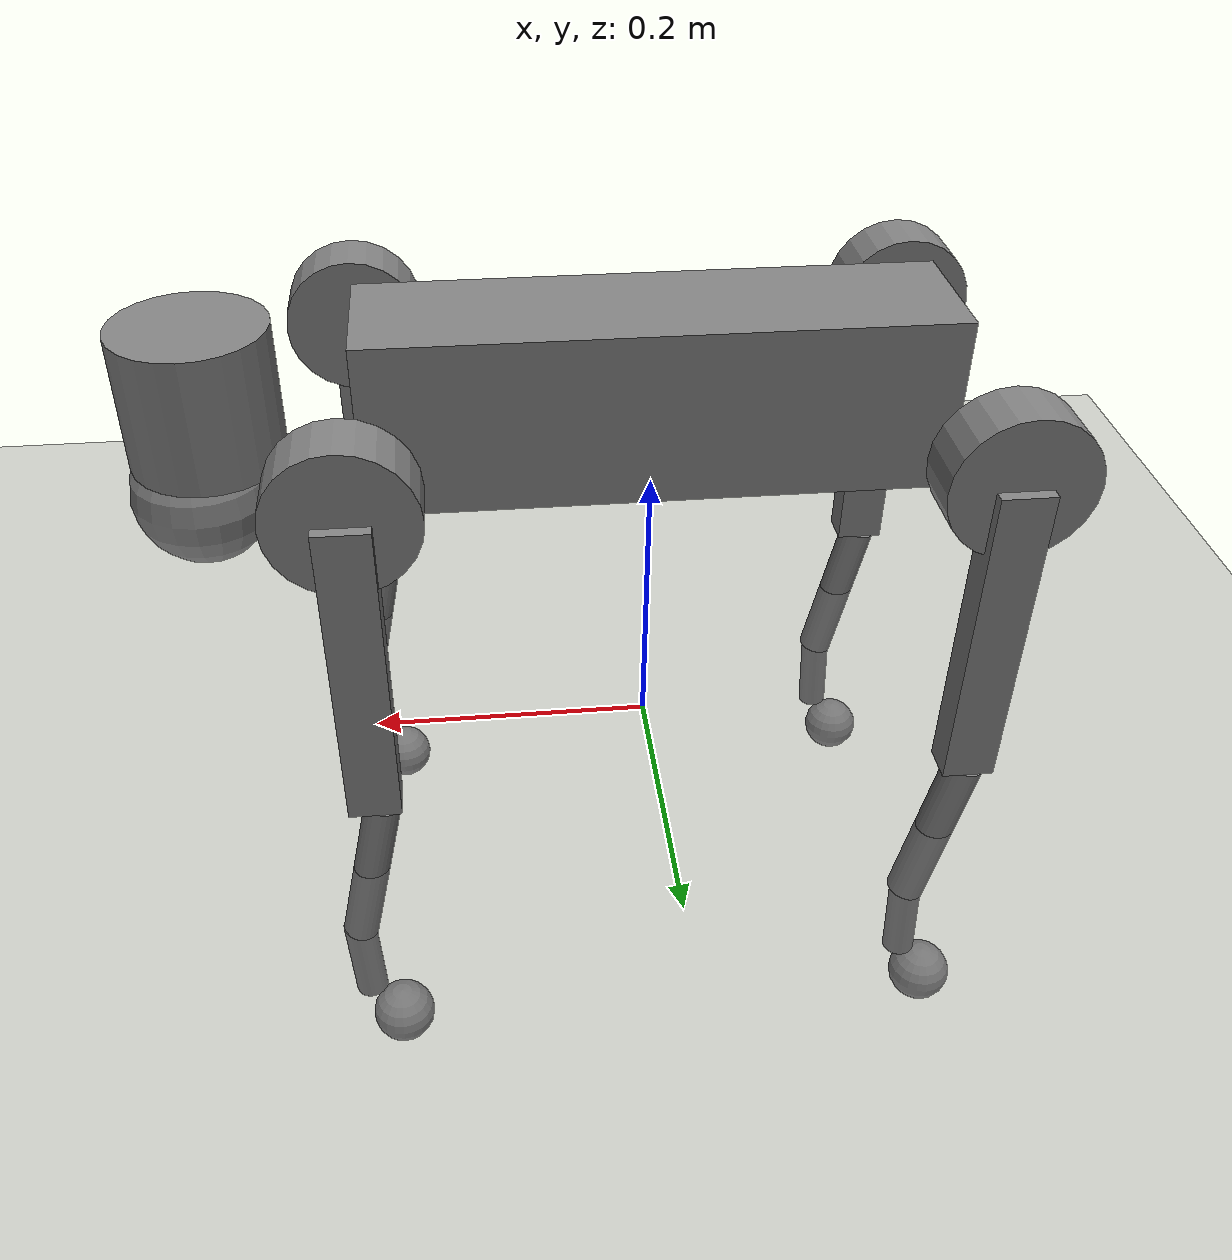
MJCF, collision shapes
<mujoco model="go2_locomotion">
  <compiler angle="radian" meshdir="/Users/sxngt/Research/mujoco_quadruped/mujoco_menagerie/unitree_go2/assets" autolimits="true"/>

  <!-- Physics settings for realistic simulation -->
  <option timestep="0.002" iterations="50" solver="PGS" cone="elliptic"
          impratio="100" gravity="0 0 -9.81" integrator="RK4"/>

  <visual>
    <rgba haze="0.15 0.25 0.35 1"/>
    <global offwidth="2560" offheight="1440" fovy="45"/>
    <quality shadowsize="4096" offsamples="8"/>
    <map force="0.1" fogstart="3" fogend="10" znear="0.01"/>
  </visual>

  <default>
    <default class="go2">
      <geom friction="0.8" margin="0.001" condim="3" contype="1" conaffinity="1"/>
      <joint axis="0 1 0" damping="1.0" armature="0.01" frictionloss="0.1"/>
      <motor ctrlrange="-23.7 23.7" ctrllimited="true"/>
      <default class="abduction">
        <joint axis="1 0 0" range="-1.0472 1.0472"/>
      </default>
      <default class="hip">
        <default class="front_hip">
          <joint range="-1.5708 3.4907"/>
        </default>
        <default class="back_hip">
          <joint range="-0.5236 4.5379"/>
        </default>
      </default>
      <default class="knee">
        <joint range="-2.7227 -0.83776"/>
        <motor ctrlrange="-45.43 45.43"/>
      </default>
      <default class="visual">
        <geom type="mesh" contype="0" conaffinity="0" group="2"/>
      </default>
      <default class="collision">
        <geom group="3"/>
        <default class="foot">
          <geom size="0.022" pos="-0.002 0 -0.213" priority="1" solimp="0.9 0.95 0.001 0.5 2"
                solref="0.01 1" condim="6" friction="1.0 0.1 0.1"/>
        </default>
      </default>
    </default>
  </default>

  <asset>
    <material name="metal" rgba=".9 .95 .95 1"/>
    <material name="black" rgba="0 0 0 1"/>
    <material name="white" rgba="1 1 1 1"/>
    <material name="gray" rgba="0.671705 0.692426 0.774270 1"/>
    <material name="grid" rgba="0.1 0.2 0.3 0.3"/>
    <material name="groundplane" rgba="0.4 0.4 0.4 1" specular="0.1" shininess="0.1"/>

    <mesh file="base_0.obj"/>
    <mesh file="base_1.obj"/>
    <mesh file="base_2.obj"/>
    <mesh file="base_3.obj"/>
    <mesh file="base_4.obj"/>
    <mesh file="hip_0.obj"/>
    <mesh file="hip_1.obj"/>
    <mesh file="thigh_0.obj"/>
    <mesh file="thigh_1.obj"/>
    <mesh file="thigh_mirror_0.obj"/>
    <mesh file="thigh_mirror_1.obj"/>
    <mesh file="calf_0.obj"/>
    <mesh file="calf_1.obj"/>
    <mesh file="calf_mirror_0.obj"/>
    <mesh file="calf_mirror_1.obj"/>
    <mesh file="foot.obj"/>

    <texture name="groundplane" type="2d" builtin="checker" mark="edge"
             width="512" height="512" rgb1="0.3 0.3 0.3" rgb2="0.4 0.4 0.4" markrgb="0.5 0.5 0.5"/>
  </asset>

  <worldbody>
    <!-- Ground plane -->
    <geom name="ground" type="plane" pos="0 0 0" size="50 50 0.1"
          material="groundplane" contype="1" conaffinity="1" friction="1.0 0.1 0.1"/>

    <!-- Lighting -->
    <light name="spotlight" mode="targetbody" target="base" pos="0 -2 3" diffuse="0.8 0.8 0.8"/>
    <light name="ambient" pos="0 0 5" dir="0 0 -1" directional="true" diffuse="0.4 0.4 0.4"/>
    <light name="fill" pos="2 2 2" dir="-1 -1 -1" directional="true" diffuse="0.3 0.3 0.3"/>

    <!-- Grid for visual reference -->
    <geom name="grid" type="plane" pos="0 0 0.001" size="10 10 0.001"
          material="grid" contype="0" conaffinity="0" group="1"/>

    <!-- GO2 Robot -->
    <body name="base" pos="0 0 0.27" childclass="go2">
      <inertial pos="0.021112 0 -0.005366" quat="-0.000543471 0.713435 -0.00173769 0.700719" mass="6.921"
        diaginertia="0.107027 0.0980771 0.0244531"/>
      <freejoint/>
      <geom mesh="base_0" material="black" class="visual"/>
      <geom mesh="base_1" material="black" class="visual"/>
      <geom mesh="base_2" material="black" class="visual"/>
      <geom mesh="base_3" material="white" class="visual"/>
      <geom mesh="base_4" material="gray" class="visual"/>
      <geom size="0.1881 0.04675 0.057" type="box" class="collision"/>
      <geom size="0.05 0.045" pos="0.285 0 0.01" type="cylinder" class="collision"/>
      <geom size="0.047" pos="0.293 0 -0.06" class="collision"/>
      <site name="imu" pos="-0.02557 0 0.04232"/>

      <!-- Front Left Leg -->
      <body name="FL_hip" pos="0.1934 0.0465 0">
        <inertial pos="-0.0054 0.00194 -0.000105" quat="0.497014 0.499245 0.505462 0.498237" mass="0.678"
          diaginertia="0.00088403 0.000596003 0.000479967"/>
        <joint name="FL_hip_joint" class="abduction"/>
        <geom mesh="hip_0" material="metal" class="visual"/>
        <geom mesh="hip_1" material="gray" class="visual"/>
        <geom size="0.046 0.02" pos="0 0.08 0" quat="1 1 0 0" type="cylinder" class="collision"/>
        <body name="FL_thigh" pos="0 0.0955 0">
          <inertial pos="-0.00374 -0.0223 -0.0327" quat="0.829533 0.0847635 -0.0200632 0.551623" mass="1.152"
            diaginertia="0.00594973 0.00584149 0.000878787"/>
          <joint name="FL_thigh_joint" class="front_hip"/>
          <geom mesh="thigh_0" material="metal" class="visual"/>
          <geom mesh="thigh_1" material="gray" class="visual"/>
          <geom size="0.1065 0.01225 0.017" pos="0 0 -0.1065" quat="0.707107 0 0.707107 0" type="box" class="collision"/>
          <body name="FL_calf" pos="0 0 -0.213">
            <inertial pos="0.00629595 -0.000622121 -0.141417" quat="0.710672 0.00154099 -0.00450087 0.703508"
              mass="0.241352" diaginertia="0.0014901 0.00146356 5.31397e-05"/>
            <joint name="FL_calf_joint" class="knee"/>
            <geom mesh="calf_0" material="gray" class="visual"/>
            <geom mesh="calf_1" material="black" class="visual"/>
            <geom size="0.012 0.06" pos="0.008 0 -0.06" quat="0.994493 0 -0.104807 0" type="cylinder" class="collision"/>
            <geom size="0.011 0.0325" pos="0.02 0 -0.148" quat="0.999688 0 0.0249974 0" type="cylinder" class="collision"/>
            <geom pos="0 0 -0.213" mesh="foot" class="visual" material="black"/>
            <geom name="FL_foot" class="foot"/>
          </body>
        </body>
      </body>

      <!-- Front Right Leg -->
      <body name="FR_hip" pos="0.1934 -0.0465 0">
        <inertial pos="-0.0054 -0.00194 -0.000105" quat="0.498237 0.505462 0.499245 0.497014" mass="0.678"
          diaginertia="0.00088403 0.000596003 0.000479967"/>
        <joint name="FR_hip_joint" class="abduction"/>
        <geom mesh="hip_0" material="metal" class="visual" quat="4.63268e-05 1 0 0"/>
        <geom mesh="hip_1" material="gray" class="visual" quat="4.63268e-05 1 0 0"/>
        <geom size="0.046 0.02" pos="0 -0.08 0" quat="0.707107 0.707107 0 0" type="cylinder" class="collision"/>
        <body name="FR_thigh" pos="0 -0.0955 0">
          <inertial pos="-0.00374 0.0223 -0.0327" quat="0.551623 -0.0200632 0.0847635 0.829533" mass="1.152"
            diaginertia="0.00594973 0.00584149 0.000878787"/>
          <joint name="FR_thigh_joint" class="front_hip"/>
          <geom mesh="thigh_mirror_0" material="metal" class="visual"/>
          <geom mesh="thigh_mirror_1" material="gray" class="visual"/>
          <geom size="0.1065 0.01225 0.017" pos="0 0 -0.1065" quat="0.707107 0 0.707107 0" type="box" class="collision"/>
          <body name="FR_calf" pos="0 0 -0.213">
            <inertial pos="0.00629595 0.000622121 -0.141417" quat="0.703508 -0.00450087 0.00154099 0.710672"
              mass="0.241352" diaginertia="0.0014901 0.00146356 5.31397e-05"/>
            <joint name="FR_calf_joint" class="knee"/>
            <geom mesh="calf_mirror_0" material="gray" class="visual"/>
            <geom mesh="calf_mirror_1" material="black" class="visual"/>
            <geom size="0.013 0.06" pos="0.01 0 -0.06" quat="0.995004 0 -0.0998334 0" type="cylinder" class="collision"/>
            <geom size="0.011 0.0325" pos="0.02 0 -0.148" quat="0.999688 0 0.0249974 0" type="cylinder" class="collision"/>
            <geom pos="0 0 -0.213" mesh="foot" class="visual" material="black"/>
            <geom name="FR_foot" class="foot"/>
          </body>
        </body>
      </body>

      <!-- Rear Left Leg -->
      <body name="RL_hip" pos="-0.1934 0.0465 0">
        <inertial pos="0.0054 0.00194 -0.000105" quat="0.505462 0.498237 0.497014 0.499245" mass="0.678"
          diaginertia="0.00088403 0.000596003 0.000479967"/>
        <joint name="RL_hip_joint" class="abduction"/>
        <geom mesh="hip_0" material="metal" class="visual" quat="4.63268e-05 0 1 0"/>
        <geom mesh="hip_1" material="gray" class="visual" quat="4.63268e-05 0 1 0"/>
        <geom size="0.046 0.02" pos="0 0.08 0" quat="0.707107 0.707107 0 0" type="cylinder" class="collision"/>
        <body name="RL_thigh" pos="0 0.0955 0">
          <inertial pos="-0.00374 -0.0223 -0.0327" quat="0.829533 0.0847635 -0.0200632 0.551623" mass="1.152"
            diaginertia="0.00594973 0.00584149 0.000878787"/>
          <joint name="RL_thigh_joint" class="back_hip"/>
          <geom mesh="thigh_0" material="metal" class="visual"/>
          <geom mesh="thigh_1" material="gray" class="visual"/>
          <geom size="0.1065 0.01225 0.017" pos="0 0 -0.1065" quat="0.707107 0 0.707107 0" type="box" class="collision"/>
          <body name="RL_calf" pos="0 0 -0.213">
            <inertial pos="0.00629595 -0.000622121 -0.141417" quat="0.710672 0.00154099 -0.00450087 0.703508"
              mass="0.241352" diaginertia="0.0014901 0.00146356 5.31397e-05"/>
            <joint name="RL_calf_joint" class="knee"/>
            <geom mesh="calf_0" material="gray" class="visual"/>
            <geom mesh="calf_1" material="black" class="visual"/>
            <geom size="0.013 0.06" pos="0.01 0 -0.06" quat="0.995004 0 -0.0998334 0" type="cylinder" class="collision"/>
            <geom size="0.011 0.0325" pos="0.02 0 -0.148" quat="0.999688 0 0.0249974 0" type="cylinder" class="collision"/>
            <geom pos="0 0 -0.213" mesh="foot" class="visual" material="black"/>
            <geom name="RL_foot" class="foot"/>
          </body>
        </body>
      </body>

      <!-- Rear Right Leg -->
      <body name="RR_hip" pos="-0.1934 -0.0465 0">
        <inertial pos="0.0054 -0.00194 -0.000105" quat="0.499245 0.497014 0.498237 0.505462" mass="0.678"
          diaginertia="0.00088403 0.000596003 0.000479967"/>
        <joint name="RR_hip_joint" class="abduction"/>
        <geom mesh="hip_0" material="metal" class="visual" quat="2.14617e-09 4.63268e-05 4.63268e-05 -1"/>
        <geom mesh="hip_1" material="gray" class="visual" quat="2.14617e-09 4.63268e-05 4.63268e-05 -1"/>
        <geom size="0.046 0.02" pos="0 -0.08 0" quat="0.707107 0.707107 0 0" type="cylinder" class="collision"/>
        <body name="RR_thigh" pos="0 -0.0955 0">
          <inertial pos="-0.00374 0.0223 -0.0327" quat="0.551623 -0.0200632 0.0847635 0.829533" mass="1.152"
            diaginertia="0.00594973 0.00584149 0.000878787"/>
          <joint name="RR_thigh_joint" class="back_hip"/>
          <geom mesh="thigh_mirror_0" material="metal" class="visual"/>
          <geom mesh="thigh_mirror_1" material="gray" class="visual"/>
          <geom size="0.1065 0.01225 0.017" pos="0 0 -0.1065" quat="0.707107 0 0.707107 0" type="box" class="collision"/>
          <body name="RR_calf" pos="0 0 -0.213">
            <inertial pos="0.00629595 0.000622121 -0.141417" quat="0.703508 -0.00450087 0.00154099 0.710672"
              mass="0.241352" diaginertia="0.0014901 0.00146356 5.31397e-05"/>
            <joint name="RR_calf_joint" class="knee"/>
            <geom mesh="calf_mirror_0" material="gray" class="visual"/>
            <geom mesh="calf_mirror_1" material="black" class="visual"/>
            <geom size="0.013 0.06" pos="0.01 0 -0.06" quat="0.995004 0 -0.0998334 0" type="cylinder" class="collision"/>
            <geom size="0.011 0.0325" pos="0.02 0 -0.148" quat="0.999688 0 0.0249974 0" type="cylinder" class="collision"/>
            <geom pos="0 0 -0.213" mesh="foot" class="visual" material="black"/>
            <geom name="RR_foot" class="foot"/>
          </body>
        </body>
      </body>
    </body>
  </worldbody>

  <actuator>
    <motor class="abduction" name="FL_hip" joint="FL_hip_joint"/>
    <motor class="hip" name="FL_thigh" joint="FL_thigh_joint"/>
    <motor class="knee" name="FL_calf" joint="FL_calf_joint"/>
    <motor class="abduction" name="FR_hip" joint="FR_hip_joint"/>
    <motor class="hip" name="FR_thigh" joint="FR_thigh_joint"/>
    <motor class="knee" name="FR_calf" joint="FR_calf_joint"/>
    <motor class="abduction" name="RL_hip" joint="RL_hip_joint"/>
    <motor class="hip" name="RL_thigh" joint="RL_thigh_joint"/>
    <motor class="knee" name="RL_calf" joint="RL_calf_joint"/>
    <motor class="abduction" name="RR_hip" joint="RR_hip_joint"/>
    <motor class="hip" name="RR_thigh" joint="RR_thigh_joint"/>
    <motor class="knee" name="RR_calf" joint="RR_calf_joint"/>
  </actuator>

  <keyframe>
    <key name="home" qpos="0 0 0.27 1 0 0 0 0 0.9 -1.8 0 0.9 -1.8 0 0.9 -1.8 0 0.9 -1.8"
      ctrl="0 0.9 -1.8 0 0.9 -1.8 0 0.9 -1.8 0 0.9 -1.8"/>
  </keyframe>
</mujoco>
